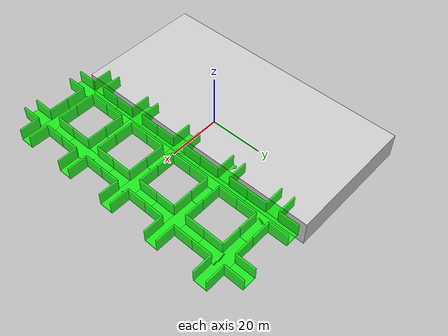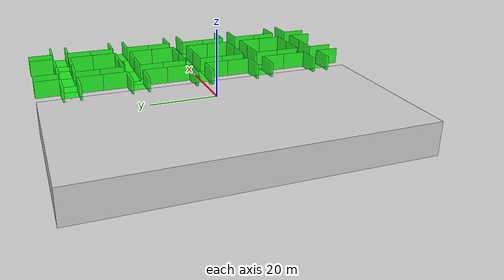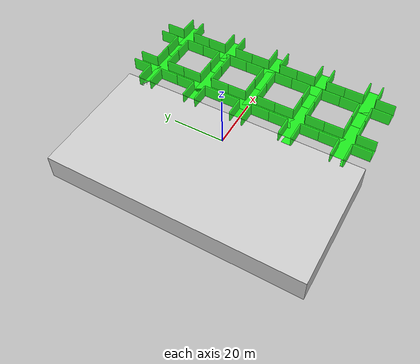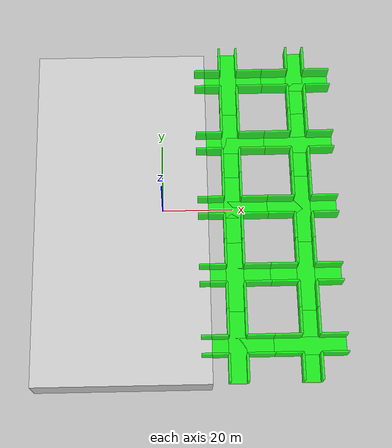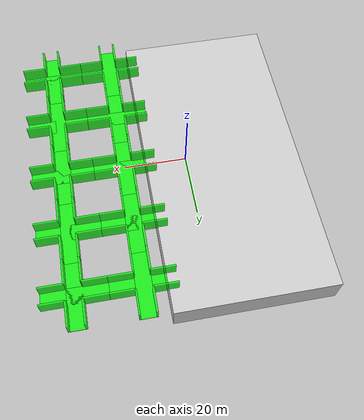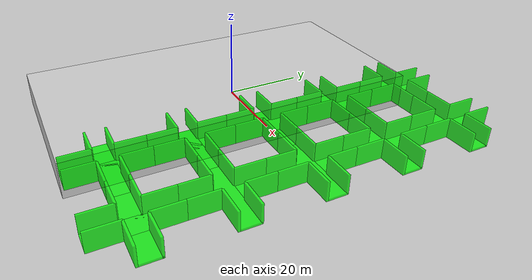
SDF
<sdf version="1.9">
 <world name="levels">
  <model name="stage">
   <pose>-12 0 -5 0 -0 0</pose>
   <static>true</static>
   <link name="link">
    <collision name="collision"><geometry><box><size>50 100 10</size></box></geometry></collision>
    <visual name="visual">
     <geometry><box><size>50 100 10</size></box></geometry>
     <material>
      <ambient>0.8 0.8 0.8 1</ambient>
      <diffuse>0.8 0.8 0.8 1</diffuse>
      <specular>0.8 0.8 0.8 1</specular>
     </material>
    </visual>
    <inertial>
     <mass>1</mass>
     <inertia><ixx>1</ixx><ixy>0</ixy><ixz>0</ixz><iyy>1</iyy><iyz>0</iyz><izz>1</izz></inertia>
    </inertial>
   </link>
  </model>
  <model name="tile_1">
   <pose>20 -40 0 0 0 -1.5708</pose>
   <static>true</static>
   <link name="link">
    <collision name="collision_0">
     <pose>0 0 -0.25 0 0 0</pose>
     <geometry><box><size>5 20 0.5</size></box></geometry>
    </collision>
    <visual name="visual_0">
     <pose>0 0 -0.25 0 0 0</pose>
     <geometry><box><size>5 20 0.5</size></box></geometry>
     <material><ambient>0 1 0 0.8</ambient><diffuse>0 1 0 0.8</diffuse><specular>1 1 1 0.8</specular></material>
    </visual>
    <collision name="collision_1">
     <pose>0 0 -0.25 0 0 1.57</pose>
     <geometry><box><size>5 20 0.5</size></box></geometry>
    </collision>
    <visual name="visual_1">
     <pose>0 0 -0.25 0 0 1.57</pose>
     <geometry><box><size>5 20 0.5</size></box></geometry>
     <material><ambient>0 1 0 0.8</ambient><diffuse>0 1 0 0.8</diffuse><specular>1 1 1 0.8</specular></material>
    </visual>
    <collision name="collision_2">
     <pose>-2.5 6.25 2 3.14 -1.57 0</pose>
     <geometry><box><size>5 7.5 0.5</size></box></geometry>
    </collision>
    <visual name="visual_2">
     <pose>-2.5 6.25 2 3.14 -1.57 0</pose>
     <geometry><box><size>5 7.5 0.5</size></box></geometry>
     <material><ambient>0 1 0 0.8</ambient><diffuse>0 1 0 0.8</diffuse><specular>1 1 1 0.8</specular></material>
    </visual>
    <collision name="collision_3">
     <pose>2.5 6.25 2 3.14 -1.57 0</pose>
     <geometry><box><size>5 7.5 0.5</size></box></geometry>
    </collision>
    <visual name="visual_3">
     <pose>2.5 6.25 2 3.14 -1.57 0</pose>
     <geometry><box><size>5 7.5 0.5</size></box></geometry>
     <material><ambient>0 1 0 0.8</ambient><diffuse>0 1 0 0.8</diffuse><specular>1 1 1 0.8</specular></material>
    </visual>
    <collision name="collision_4">
     <pose>-2.5 -6.25 2 3.14 -1.57 0</pose>
     <geometry><box><size>5 7.5 0.5</size></box></geometry>
    </collision>
    <visual name="visual_4">
     <pose>-2.5 -6.25 2 3.14 -1.57 0</pose>
     <geometry><box><size>5 7.5 0.5</size></box></geometry>
     <material><ambient>0 1 0 0.8</ambient><diffuse>0 1 0 0.8</diffuse><specular>1 1 1 0.8</specular></material>
    </visual>
    <collision name="collision_5">
     <pose>2.5 -6.25 2 3.14 -1.57 0</pose>
     <geometry><box><size>5 7.5 0.5</size></box></geometry>
    </collision>
    <visual name="visual_5">
     <pose>2.5 -6.25 2 3.14 -1.57 0</pose>
     <geometry><box><size>5 7.5 0.5</size></box></geometry>
     <material><ambient>0 1 0 0.8</ambient><diffuse>0 1 0 0.8</diffuse><specular>1 1 1 0.8</specular></material>
    </visual>
    <collision name="collision_6">
     <pose>6.25 2.5 2 1.57 1.57 0</pose>
     <geometry><box><size>5 7.5 0.5</size></box></geometry>
    </collision>
    <visual name="visual_6">
     <pose>6.25 2.5 2 1.57 1.57 0</pose>
     <geometry><box><size>5 7.5 0.5</size></box></geometry>
     <material><ambient>0 1 0 0.8</ambient><diffuse>0 1 0 0.8</diffuse><specular>1 1 1 0.8</specular></material>
    </visual>
    <collision name="collision_7">
     <pose>-6.25 2.5 2 1.57 1.57 0</pose>
     <geometry><box><size>5 7.5 0.5</size></box></geometry>
    </collision>
    <visual name="visual_7">
     <pose>-6.25 2.5 2 1.57 1.57 0</pose>
     <geometry><box><size>5 7.5 0.5</size></box></geometry>
     <material><ambient>0 1 0 0.8</ambient><diffuse>0 1 0 0.8</diffuse><specular>1 1 1 0.8</specular></material>
    </visual>
    <collision name="collision_8">
     <pose>6.25 -2.5 2 1.57 1.57 0</pose>
     <geometry><box><size>5 7.5 0.5</size></box></geometry>
    </collision>
    <visual name="visual_8">
     <pose>6.25 -2.5 2 1.57 1.57 0</pose>
     <geometry><box><size>5 7.5 0.5</size></box></geometry>
     <material><ambient>0 1 0 0.8</ambient><diffuse>0 1 0 0.8</diffuse><specular>1 1 1 0.8</specular></material>
    </visual>
    <collision name="collision_9">
     <pose>-6.25 -2.5 2 1.57 1.57 0</pose>
     <geometry><box><size>5 7.5 0.5</size></box></geometry>
    </collision>
    <visual name="visual_9">
     <pose>-6.25 -2.5 2 1.57 1.57 0</pose>
     <geometry><box><size>5 7.5 0.5</size></box></geometry>
     <material><ambient>0 1 0 0.8</ambient><diffuse>0 1 0 0.8</diffuse><specular>1 1 1 0.8</specular></material>
    </visual>
    <inertial>
     <mass>1</mass>
     <inertia><ixx>1</ixx><ixy>0</ixy><ixz>0</ixz><iyy>1</iyy><iyz>0</iyz><izz>1</izz></inertia>
    </inertial>
   </link>
  </model>
  <model name="tile_2">
   <pose>20 -20 0 0 0 -1.5708</pose>
   <static>true</static>
   <link name="link">
    <collision name="collision_0">
     <pose>0 0 -0.25 0 0 0</pose>
     <geometry><box><size>5 20 0.5</size></box></geometry>
    </collision>
    <visual name="visual_0">
     <pose>0 0 -0.25 0 0 0</pose>
     <geometry><box><size>5 20 0.5</size></box></geometry>
     <material><ambient>0 1 0 0.8</ambient><diffuse>0 1 0 0.8</diffuse><specular>1 1 1 0.8</specular></material>
    </visual>
    <collision name="collision_1">
     <pose>0 0 -0.25 0 0 1.57</pose>
     <geometry><box><size>5 20 0.5</size></box></geometry>
    </collision>
    <visual name="visual_1">
     <pose>0 0 -0.25 0 0 1.57</pose>
     <geometry><box><size>5 20 0.5</size></box></geometry>
     <material><ambient>0 1 0 0.8</ambient><diffuse>0 1 0 0.8</diffuse><specular>1 1 1 0.8</specular></material>
    </visual>
    <collision name="collision_2">
     <pose>-2.5 6.25 2 3.14 -1.57 0</pose>
     <geometry><box><size>5 7.5 0.5</size></box></geometry>
    </collision>
    <visual name="visual_2">
     <pose>-2.5 6.25 2 3.14 -1.57 0</pose>
     <geometry><box><size>5 7.5 0.5</size></box></geometry>
     <material><ambient>0 1 0 0.8</ambient><diffuse>0 1 0 0.8</diffuse><specular>1 1 1 0.8</specular></material>
    </visual>
    <collision name="collision_3">
     <pose>2.5 6.25 2 3.14 -1.57 0</pose>
     <geometry><box><size>5 7.5 0.5</size></box></geometry>
    </collision>
    <visual name="visual_3">
     <pose>2.5 6.25 2 3.14 -1.57 0</pose>
     <geometry><box><size>5 7.5 0.5</size></box></geometry>
     <material><ambient>0 1 0 0.8</ambient><diffuse>0 1 0 0.8</diffuse><specular>1 1 1 0.8</specular></material>
    </visual>
    <collision name="collision_4">
     <pose>-2.5 -6.25 2 3.14 -1.57 0</pose>
     <geometry><box><size>5 7.5 0.5</size></box></geometry>
    </collision>
    <visual name="visual_4">
     <pose>-2.5 -6.25 2 3.14 -1.57 0</pose>
     <geometry><box><size>5 7.5 0.5</size></box></geometry>
     <material><ambient>0 1 0 0.8</ambient><diffuse>0 1 0 0.8</diffuse><specular>1 1 1 0.8</specular></material>
    </visual>
    <collision name="collision_5">
     <pose>2.5 -6.25 2 3.14 -1.57 0</pose>
     <geometry><box><size>5 7.5 0.5</size></box></geometry>
    </collision>
    <visual name="visual_5">
     <pose>2.5 -6.25 2 3.14 -1.57 0</pose>
     <geometry><box><size>5 7.5 0.5</size></box></geometry>
     <material><ambient>0 1 0 0.8</ambient><diffuse>0 1 0 0.8</diffuse><specular>1 1 1 0.8</specular></material>
    </visual>
    <collision name="collision_6">
     <pose>6.25 2.5 2 1.57 1.57 0</pose>
     <geometry><box><size>5 7.5 0.5</size></box></geometry>
    </collision>
    <visual name="visual_6">
     <pose>6.25 2.5 2 1.57 1.57 0</pose>
     <geometry><box><size>5 7.5 0.5</size></box></geometry>
     <material><ambient>0 1 0 0.8</ambient><diffuse>0 1 0 0.8</diffuse><specular>1 1 1 0.8</specular></material>
    </visual>
    <collision name="collision_7">
     <pose>-6.25 2.5 2 1.57 1.57 0</pose>
     <geometry><box><size>5 7.5 0.5</size></box></geometry>
    </collision>
    <visual name="visual_7">
     <pose>-6.25 2.5 2 1.57 1.57 0</pose>
     <geometry><box><size>5 7.5 0.5</size></box></geometry>
     <material><ambient>0 1 0 0.8</ambient><diffuse>0 1 0 0.8</diffuse><specular>1 1 1 0.8</specular></material>
    </visual>
    <collision name="collision_8">
     <pose>6.25 -2.5 2 1.57 1.57 0</pose>
     <geometry><box><size>5 7.5 0.5</size></box></geometry>
    </collision>
    <visual name="visual_8">
     <pose>6.25 -2.5 2 1.57 1.57 0</pose>
     <geometry><box><size>5 7.5 0.5</size></box></geometry>
     <material><ambient>0 1 0 0.8</ambient><diffuse>0 1 0 0.8</diffuse><specular>1 1 1 0.8</specular></material>
    </visual>
    <collision name="collision_9">
     <pose>-6.25 -2.5 2 1.57 1.57 0</pose>
     <geometry><box><size>5 7.5 0.5</size></box></geometry>
    </collision>
    <visual name="visual_9">
     <pose>-6.25 -2.5 2 1.57 1.57 0</pose>
     <geometry><box><size>5 7.5 0.5</size></box></geometry>
     <material><ambient>0 1 0 0.8</ambient><diffuse>0 1 0 0.8</diffuse><specular>1 1 1 0.8</specular></material>
    </visual>
    <inertial>
     <mass>1</mass>
     <inertia><ixx>1</ixx><ixy>0</ixy><ixz>0</ixz><iyy>1</iyy><iyz>0</iyz><izz>1</izz></inertia>
    </inertial>
   </link>
  </model>
  <model name="tile_3">
   <pose>20 0 0 0 -0 0</pose>
   <static>true</static>
   <link name="link">
    <collision name="collision_0">
     <pose>0 0 -0.25 0 0 0</pose>
     <geometry><box><size>5 20 0.5</size></box></geometry>
    </collision>
    <visual name="visual_0">
     <pose>0 0 -0.25 0 0 0</pose>
     <geometry><box><size>5 20 0.5</size></box></geometry>
     <material><ambient>0 1 0 0.8</ambient><diffuse>0 1 0 0.8</diffuse><specular>1 1 1 0.8</specular></material>
    </visual>
    <collision name="collision_1">
     <pose>0 0 -0.25 0 0 1.57</pose>
     <geometry><box><size>5 20 0.5</size></box></geometry>
    </collision>
    <visual name="visual_1">
     <pose>0 0 -0.25 0 0 1.57</pose>
     <geometry><box><size>5 20 0.5</size></box></geometry>
     <material><ambient>0 1 0 0.8</ambient><diffuse>0 1 0 0.8</diffuse><specular>1 1 1 0.8</specular></material>
    </visual>
    <collision name="collision_2">
     <pose>-2.5 6.25 2 3.14 -1.57 0</pose>
     <geometry><box><size>5 7.5 0.5</size></box></geometry>
    </collision>
    <visual name="visual_2">
     <pose>-2.5 6.25 2 3.14 -1.57 0</pose>
     <geometry><box><size>5 7.5 0.5</size></box></geometry>
     <material><ambient>0 1 0 0.8</ambient><diffuse>0 1 0 0.8</diffuse><specular>1 1 1 0.8</specular></material>
    </visual>
    <collision name="collision_3">
     <pose>2.5 6.25 2 3.14 -1.57 0</pose>
     <geometry><box><size>5 7.5 0.5</size></box></geometry>
    </collision>
    <visual name="visual_3">
     <pose>2.5 6.25 2 3.14 -1.57 0</pose>
     <geometry><box><size>5 7.5 0.5</size></box></geometry>
     <material><ambient>0 1 0 0.8</ambient><diffuse>0 1 0 0.8</diffuse><specular>1 1 1 0.8</specular></material>
    </visual>
    <collision name="collision_4">
     <pose>-2.5 -6.25 2 3.14 -1.57 0</pose>
     <geometry><box><size>5 7.5 0.5</size></box></geometry>
    </collision>
    <visual name="visual_4">
     <pose>-2.5 -6.25 2 3.14 -1.57 0</pose>
     <geometry><box><size>5 7.5 0.5</size></box></geometry>
     <material><ambient>0 1 0 0.8</ambient><diffuse>0 1 0 0.8</diffuse><specular>1 1 1 0.8</specular></material>
    </visual>
    <collision name="collision_5">
     <pose>2.5 -6.25 2 3.14 -1.57 0</pose>
     <geometry><box><size>5 7.5 0.5</size></box></geometry>
    </collision>
    <visual name="visual_5">
     <pose>2.5 -6.25 2 3.14 -1.57 0</pose>
     <geometry><box><size>5 7.5 0.5</size></box></geometry>
     <material><ambient>0 1 0 0.8</ambient><diffuse>0 1 0 0.8</diffuse><specular>1 1 1 0.8</specular></material>
    </visual>
    <collision name="collision_6">
     <pose>6.25 2.5 2 1.57 1.57 0</pose>
     <geometry><box><size>5 7.5 0.5</size></box></geometry>
    </collision>
    <visual name="visual_6">
     <pose>6.25 2.5 2 1.57 1.57 0</pose>
     <geometry><box><size>5 7.5 0.5</size></box></geometry>
     <material><ambient>0 1 0 0.8</ambient><diffuse>0 1 0 0.8</diffuse><specular>1 1 1 0.8</specular></material>
    </visual>
    <collision name="collision_7">
     <pose>-6.25 2.5 2 1.57 1.57 0</pose>
     <geometry><box><size>5 7.5 0.5</size></box></geometry>
    </collision>
    <visual name="visual_7">
     <pose>-6.25 2.5 2 1.57 1.57 0</pose>
     <geometry><box><size>5 7.5 0.5</size></box></geometry>
     <material><ambient>0 1 0 0.8</ambient><diffuse>0 1 0 0.8</diffuse><specular>1 1 1 0.8</specular></material>
    </visual>
    <collision name="collision_8">
     <pose>6.25 -2.5 2 1.57 1.57 0</pose>
     <geometry><box><size>5 7.5 0.5</size></box></geometry>
    </collision>
    <visual name="visual_8">
     <pose>6.25 -2.5 2 1.57 1.57 0</pose>
     <geometry><box><size>5 7.5 0.5</size></box></geometry>
     <material><ambient>0 1 0 0.8</ambient><diffuse>0 1 0 0.8</diffuse><specular>1 1 1 0.8</specular></material>
    </visual>
    <collision name="collision_9">
     <pose>-6.25 -2.5 2 1.57 1.57 0</pose>
     <geometry><box><size>5 7.5 0.5</size></box></geometry>
    </collision>
    <visual name="visual_9">
     <pose>-6.25 -2.5 2 1.57 1.57 0</pose>
     <geometry><box><size>5 7.5 0.5</size></box></geometry>
     <material><ambient>0 1 0 0.8</ambient><diffuse>0 1 0 0.8</diffuse><specular>1 1 1 0.8</specular></material>
    </visual>
    <inertial>
     <mass>1</mass>
     <inertia><ixx>1</ixx><ixy>0</ixy><ixz>0</ixz><iyy>1</iyy><iyz>0</iyz><izz>1</izz></inertia>
    </inertial>
   </link>
  </model>
  <model name="tile_4">
   <pose>20 20 0 0 -0 0</pose>
   <static>true</static>
   <link name="link">
    <collision name="collision_0">
     <pose>0 0 -0.25 0 0 0</pose>
     <geometry><box><size>5 20 0.5</size></box></geometry>
    </collision>
    <visual name="visual_0">
     <pose>0 0 -0.25 0 0 0</pose>
     <geometry><box><size>5 20 0.5</size></box></geometry>
     <material><ambient>0 1 0 0.8</ambient><diffuse>0 1 0 0.8</diffuse><specular>1 1 1 0.8</specular></material>
    </visual>
    <collision name="collision_1">
     <pose>0 0 -0.25 0 0 1.57</pose>
     <geometry><box><size>5 20 0.5</size></box></geometry>
    </collision>
    <visual name="visual_1">
     <pose>0 0 -0.25 0 0 1.57</pose>
     <geometry><box><size>5 20 0.5</size></box></geometry>
     <material><ambient>0 1 0 0.8</ambient><diffuse>0 1 0 0.8</diffuse><specular>1 1 1 0.8</specular></material>
    </visual>
    <collision name="collision_2">
     <pose>-2.5 6.25 2 3.14 -1.57 0</pose>
     <geometry><box><size>5 7.5 0.5</size></box></geometry>
    </collision>
    <visual name="visual_2">
     <pose>-2.5 6.25 2 3.14 -1.57 0</pose>
     <geometry><box><size>5 7.5 0.5</size></box></geometry>
     <material><ambient>0 1 0 0.8</ambient><diffuse>0 1 0 0.8</diffuse><specular>1 1 1 0.8</specular></material>
    </visual>
    <collision name="collision_3">
     <pose>2.5 6.25 2 3.14 -1.57 0</pose>
     <geometry><box><size>5 7.5 0.5</size></box></geometry>
    </collision>
    <visual name="visual_3">
     <pose>2.5 6.25 2 3.14 -1.57 0</pose>
     <geometry><box><size>5 7.5 0.5</size></box></geometry>
     <material><ambient>0 1 0 0.8</ambient><diffuse>0 1 0 0.8</diffuse><specular>1 1 1 0.8</specular></material>
    </visual>
    <collision name="collision_4">
     <pose>-2.5 -6.25 2 3.14 -1.57 0</pose>
     <geometry><box><size>5 7.5 0.5</size></box></geometry>
    </collision>
    <visual name="visual_4">
     <pose>-2.5 -6.25 2 3.14 -1.57 0</pose>
     <geometry><box><size>5 7.5 0.5</size></box></geometry>
     <material><ambient>0 1 0 0.8</ambient><diffuse>0 1 0 0.8</diffuse><specular>1 1 1 0.8</specular></material>
    </visual>
    <collision name="collision_5">
     <pose>2.5 -6.25 2 3.14 -1.57 0</pose>
     <geometry><box><size>5 7.5 0.5</size></box></geometry>
    </collision>
    <visual name="visual_5">
     <pose>2.5 -6.25 2 3.14 -1.57 0</pose>
     <geometry><box><size>5 7.5 0.5</size></box></geometry>
     <material><ambient>0 1 0 0.8</ambient><diffuse>0 1 0 0.8</diffuse><specular>1 1 1 0.8</specular></material>
    </visual>
    <collision name="collision_6">
     <pose>6.25 2.5 2 1.57 1.57 0</pose>
     <geometry><box><size>5 7.5 0.5</size></box></geometry>
    </collision>
    <visual name="visual_6">
     <pose>6.25 2.5 2 1.57 1.57 0</pose>
     <geometry><box><size>5 7.5 0.5</size></box></geometry>
     <material><ambient>0 1 0 0.8</ambient><diffuse>0 1 0 0.8</diffuse><specular>1 1 1 0.8</specular></material>
    </visual>
    <collision name="collision_7">
     <pose>-6.25 2.5 2 1.57 1.57 0</pose>
     <geometry><box><size>5 7.5 0.5</size></box></geometry>
    </collision>
    <visual name="visual_7">
     <pose>-6.25 2.5 2 1.57 1.57 0</pose>
     <geometry><box><size>5 7.5 0.5</size></box></geometry>
     <material><ambient>0 1 0 0.8</ambient><diffuse>0 1 0 0.8</diffuse><specular>1 1 1 0.8</specular></material>
    </visual>
    <collision name="collision_8">
     <pose>6.25 -2.5 2 1.57 1.57 0</pose>
     <geometry><box><size>5 7.5 0.5</size></box></geometry>
    </collision>
    <visual name="visual_8">
     <pose>6.25 -2.5 2 1.57 1.57 0</pose>
     <geometry><box><size>5 7.5 0.5</size></box></geometry>
     <material><ambient>0 1 0 0.8</ambient><diffuse>0 1 0 0.8</diffuse><specular>1 1 1 0.8</specular></material>
    </visual>
    <collision name="collision_9">
     <pose>-6.25 -2.5 2 1.57 1.57 0</pose>
     <geometry><box><size>5 7.5 0.5</size></box></geometry>
    </collision>
    <visual name="visual_9">
     <pose>-6.25 -2.5 2 1.57 1.57 0</pose>
     <geometry><box><size>5 7.5 0.5</size></box></geometry>
     <material><ambient>0 1 0 0.8</ambient><diffuse>0 1 0 0.8</diffuse><specular>1 1 1 0.8</specular></material>
    </visual>
    <inertial>
     <mass>1</mass>
     <inertia><ixx>1</ixx><ixy>0</ixy><ixz>0</ixz><iyy>1</iyy><iyz>0</iyz><izz>1</izz></inertia>
    </inertial>
   </link>
  </model>
  <model name="tile_5">
   <pose>20 40 0 0 0 -1.5708</pose>
   <static>true</static>
   <link name="link">
    <collision name="collision_0">
     <pose>0 0 -0.25 0 0 0</pose>
     <geometry><box><size>5 20 0.5</size></box></geometry>
    </collision>
    <visual name="visual_0">
     <pose>0 0 -0.25 0 0 0</pose>
     <geometry><box><size>5 20 0.5</size></box></geometry>
     <material><ambient>0 1 0 0.8</ambient><diffuse>0 1 0 0.8</diffuse><specular>1 1 1 0.8</specular></material>
    </visual>
    <collision name="collision_1">
     <pose>0 0 -0.25 0 0 1.57</pose>
     <geometry><box><size>5 20 0.5</size></box></geometry>
    </collision>
    <visual name="visual_1">
     <pose>0 0 -0.25 0 0 1.57</pose>
     <geometry><box><size>5 20 0.5</size></box></geometry>
     <material><ambient>0 1 0 0.8</ambient><diffuse>0 1 0 0.8</diffuse><specular>1 1 1 0.8</specular></material>
    </visual>
    <collision name="collision_2">
     <pose>-2.5 6.25 2 3.14 -1.57 0</pose>
     <geometry><box><size>5 7.5 0.5</size></box></geometry>
    </collision>
    <visual name="visual_2">
     <pose>-2.5 6.25 2 3.14 -1.57 0</pose>
     <geometry><box><size>5 7.5 0.5</size></box></geometry>
     <material><ambient>0 1 0 0.8</ambient><diffuse>0 1 0 0.8</diffuse><specular>1 1 1 0.8</specular></material>
    </visual>
    <collision name="collision_3">
     <pose>2.5 6.25 2 3.14 -1.57 0</pose>
     <geometry><box><size>5 7.5 0.5</size></box></geometry>
    </collision>
    <visual name="visual_3">
     <pose>2.5 6.25 2 3.14 -1.57 0</pose>
     <geometry><box><size>5 7.5 0.5</size></box></geometry>
     <material><ambient>0 1 0 0.8</ambient><diffuse>0 1 0 0.8</diffuse><specular>1 1 1 0.8</specular></material>
    </visual>
    <collision name="collision_4">
     <pose>-2.5 -6.25 2 3.14 -1.57 0</pose>
     <geometry><box><size>5 7.5 0.5</size></box></geometry>
    </collision>
    <visual name="visual_4">
     <pose>-2.5 -6.25 2 3.14 -1.57 0</pose>
     <geometry><box><size>5 7.5 0.5</size></box></geometry>
     <material><ambient>0 1 0 0.8</ambient><diffuse>0 1 0 0.8</diffuse><specular>1 1 1 0.8</specular></material>
    </visual>
    <collision name="collision_5">
     <pose>2.5 -6.25 2 3.14 -1.57 0</pose>
     <geometry><box><size>5 7.5 0.5</size></box></geometry>
    </collision>
    <visual name="visual_5">
     <pose>2.5 -6.25 2 3.14 -1.57 0</pose>
     <geometry><box><size>5 7.5 0.5</size></box></geometry>
     <material><ambient>0 1 0 0.8</ambient><diffuse>0 1 0 0.8</diffuse><specular>1 1 1 0.8</specular></material>
    </visual>
    <collision name="collision_6">
     <pose>6.25 2.5 2 1.57 1.57 0</pose>
     <geometry><box><size>5 7.5 0.5</size></box></geometry>
    </collision>
    <visual name="visual_6">
     <pose>6.25 2.5 2 1.57 1.57 0</pose>
     <geometry><box><size>5 7.5 0.5</size></box></geometry>
     <material><ambient>0 1 0 0.8</ambient><diffuse>0 1 0 0.8</diffuse><specular>1 1 1 0.8</specular></material>
    </visual>
    <collision name="collision_7">
     <pose>-6.25 2.5 2 1.57 1.57 0</pose>
     <geometry><box><size>5 7.5 0.5</size></box></geometry>
    </collision>
    <visual name="visual_7">
     <pose>-6.25 2.5 2 1.57 1.57 0</pose>
     <geometry><box><size>5 7.5 0.5</size></box></geometry>
     <material><ambient>0 1 0 0.8</ambient><diffuse>0 1 0 0.8</diffuse><specular>1 1 1 0.8</specular></material>
    </visual>
    <collision name="collision_8">
     <pose>6.25 -2.5 2 1.57 1.57 0</pose>
     <geometry><box><size>5 7.5 0.5</size></box></geometry>
    </collision>
    <visual name="visual_8">
     <pose>6.25 -2.5 2 1.57 1.57 0</pose>
     <geometry><box><size>5 7.5 0.5</size></box></geometry>
     <material><ambient>0 1 0 0.8</ambient><diffuse>0 1 0 0.8</diffuse><specular>1 1 1 0.8</specular></material>
    </visual>
    <collision name="collision_9">
     <pose>-6.25 -2.5 2 1.57 1.57 0</pose>
     <geometry><box><size>5 7.5 0.5</size></box></geometry>
    </collision>
    <visual name="visual_9">
     <pose>-6.25 -2.5 2 1.57 1.57 0</pose>
     <geometry><box><size>5 7.5 0.5</size></box></geometry>
     <material><ambient>0 1 0 0.8</ambient><diffuse>0 1 0 0.8</diffuse><specular>1 1 1 0.8</specular></material>
    </visual>
    <inertial>
     <mass>1</mass>
     <inertia><ixx>1</ixx><ixy>0</ixy><ixz>0</ixz><iyy>1</iyy><iyz>0</iyz><izz>1</izz></inertia>
    </inertial>
   </link>
  </model>
  <model name="tile_6">
   <pose>40 -40 0 0 -0 0</pose>
   <static>true</static>
   <link name="link">
    <collision name="collision_0">
     <pose>0 0 -0.25 0 0 0</pose>
     <geometry><box><size>5 20 0.5</size></box></geometry>
    </collision>
    <visual name="visual_0">
     <pose>0 0 -0.25 0 0 0</pose>
     <geometry><box><size>5 20 0.5</size></box></geometry>
     <material><ambient>0 1 0 0.8</ambient><diffuse>0 1 0 0.8</diffuse><specular>1 1 1 0.8</specular></material>
    </visual>
    <collision name="collision_1">
     <pose>0 0 -0.25 0 0 1.57</pose>
     <geometry><box><size>5 20 0.5</size></box></geometry>
    </collision>
    <visual name="visual_1">
     <pose>0 0 -0.25 0 0 1.57</pose>
     <geometry><box><size>5 20 0.5</size></box></geometry>
     <material><ambient>0 1 0 0.8</ambient><diffuse>0 1 0 0.8</diffuse><specular>1 1 1 0.8</specular></material>
    </visual>
    <collision name="collision_2">
     <pose>-2.5 6.25 2 3.14 -1.57 0</pose>
     <geometry><box><size>5 7.5 0.5</size></box></geometry>
    </collision>
    <visual name="visual_2">
     <pose>-2.5 6.25 2 3.14 -1.57 0</pose>
     <geometry><box><size>5 7.5 0.5</size></box></geometry>
     <material><ambient>0 1 0 0.8</ambient><diffuse>0 1 0 0.8</diffuse><specular>1 1 1 0.8</specular></material>
    </visual>
    <collision name="collision_3">
     <pose>2.5 6.25 2 3.14 -1.57 0</pose>
     <geometry><box><size>5 7.5 0.5</size></box></geometry>
    </collision>
    <visual name="visual_3">
     <pose>2.5 6.25 2 3.14 -1.57 0</pose>
     <geometry><box><size>5 7.5 0.5</size></box></geometry>
     <material><ambient>0 1 0 0.8</ambient><diffuse>0 1 0 0.8</diffuse><specular>1 1 1 0.8</specular></material>
    </visual>
    <collision name="collision_4">
     <pose>-2.5 -6.25 2 3.14 -1.57 0</pose>
     <geometry><box><size>5 7.5 0.5</size></box></geometry>
    </collision>
    <visual name="visual_4">
     <pose>-2.5 -6.25 2 3.14 -1.57 0</pose>
     <geometry><box><size>5 7.5 0.5</size></box></geometry>
     <material><ambient>0 1 0 0.8</ambient><diffuse>0 1 0 0.8</diffuse><specular>1 1 1 0.8</specular></material>
    </visual>
    <collision name="collision_5">
     <pose>2.5 -6.25 2 3.14 -1.57 0</pose>
     <geometry><box><size>5 7.5 0.5</size></box></geometry>
    </collision>
    <visual name="visual_5">
     <pose>2.5 -6.25 2 3.14 -1.57 0</pose>
     <geometry><box><size>5 7.5 0.5</size></box></geometry>
     <material><ambient>0 1 0 0.8</ambient><diffuse>0 1 0 0.8</diffuse><specular>1 1 1 0.8</specular></material>
    </visual>
    <collision name="collision_6">
     <pose>6.25 2.5 2 1.57 1.57 0</pose>
     <geometry><box><size>5 7.5 0.5</size></box></geometry>
    </collision>
    <visual name="visual_6">
     <pose>6.25 2.5 2 1.57 1.57 0</pose>
     <geometry><box><size>5 7.5 0.5</size></box></geometry>
     <material><ambient>0 1 0 0.8</ambient><diffuse>0 1 0 0.8</diffuse><specular>1 1 1 0.8</specular></material>
    </visual>
    <collision name="collision_7">
     <pose>-6.25 2.5 2 1.57 1.57 0</pose>
     <geometry><box><size>5 7.5 0.5</size></box></geometry>
    </collision>
    <visual name="visual_7">
     <pose>-6.25 2.5 2 1.57 1.57 0</pose>
     <geometry><box><size>5 7.5 0.5</size></box></geometry>
     <material><ambient>0 1 0 0.8</ambient><diffuse>0 1 0 0.8</diffuse><specular>1 1 1 0.8</specular></material>
    </visual>
    <collision name="collision_8">
     <pose>6.25 -2.5 2 1.57 1.57 0</pose>
     <geometry><box><size>5 7.5 0.5</size></box></geometry>
    </collision>
    <visual name="visual_8">
     <pose>6.25 -2.5 2 1.57 1.57 0</pose>
     <geometry><box><size>5 7.5 0.5</size></box></geometry>
     <material><ambient>0 1 0 0.8</ambient><diffuse>0 1 0 0.8</diffuse><specular>1 1 1 0.8</specular></material>
    </visual>
    <collision name="collision_9">
     <pose>-6.25 -2.5 2 1.57 1.57 0</pose>
     <geometry><box><size>5 7.5 0.5</size></box></geometry>
    </collision>
    <visual name="visual_9">
     <pose>-6.25 -2.5 2 1.57 1.57 0</pose>
     <geometry><box><size>5 7.5 0.5</size></box></geometry>
     <material><ambient>0 1 0 0.8</ambient><diffuse>0 1 0 0.8</diffuse><specular>1 1 1 0.8</specular></material>
    </visual>
    <inertial>
     <mass>1</mass>
     <inertia><ixx>1</ixx><ixy>0</ixy><ixz>0</ixz><iyy>1</iyy><iyz>0</iyz><izz>1</izz></inertia>
    </inertial>
   </link>
  </model>
  <model name="tile_7">
   <pose>40 -20 0 0 0 -1.5708</pose>
   <static>true</static>
   <link name="link">
    <collision name="collision_0">
     <pose>0 0 -0.25 0 0 0</pose>
     <geometry><box><size>5 20 0.5</size></box></geometry>
    </collision>
    <visual name="visual_0">
     <pose>0 0 -0.25 0 0 0</pose>
     <geometry><box><size>5 20 0.5</size></box></geometry>
     <material><ambient>0 1 0 0.8</ambient><diffuse>0 1 0 0.8</diffuse><specular>1 1 1 0.8</specular></material>
    </visual>
    <collision name="collision_1">
     <pose>0 0 -0.25 0 0 1.57</pose>
     <geometry><box><size>5 20 0.5</size></box></geometry>
    </collision>
    <visual name="visual_1">
     <pose>0 0 -0.25 0 0 1.57</pose>
     <geometry><box><size>5 20 0.5</size></box></geometry>
     <material><ambient>0 1 0 0.8</ambient><diffuse>0 1 0 0.8</diffuse><specular>1 1 1 0.8</specular></material>
    </visual>
    <collision name="collision_2">
     <pose>-2.5 6.25 2 3.14 -1.57 0</pose>
     <geometry><box><size>5 7.5 0.5</size></box></geometry>
    </collision>
    <visual name="visual_2">
     <pose>-2.5 6.25 2 3.14 -1.57 0</pose>
     <geometry><box><size>5 7.5 0.5</size></box></geometry>
     <material><ambient>0 1 0 0.8</ambient><diffuse>0 1 0 0.8</diffuse><specular>1 1 1 0.8</specular></material>
    </visual>
    <collision name="collision_3">
     <pose>2.5 6.25 2 3.14 -1.57 0</pose>
     <geometry><box><size>5 7.5 0.5</size></box></geometry>
    </collision>
    <visual name="visual_3">
     <pose>2.5 6.25 2 3.14 -1.57 0</pose>
     <geometry><box><size>5 7.5 0.5</size></box></geometry>
     <material><ambient>0 1 0 0.8</ambient><diffuse>0 1 0 0.8</diffuse><specular>1 1 1 0.8</specular></material>
    </visual>
    <collision name="collision_4">
     <pose>-2.5 -6.25 2 3.14 -1.57 0</pose>
     <geometry><box><size>5 7.5 0.5</size></box></geometry>
    </collision>
    <visual name="visual_4">
     <pose>-2.5 -6.25 2 3.14 -1.57 0</pose>
     <geometry><box><size>5 7.5 0.5</size></box></geometry>
     <material><ambient>0 1 0 0.8</ambient><diffuse>0 1 0 0.8</diffuse><specular>1 1 1 0.8</specular></material>
    </visual>
    <collision name="collision_5">
     <pose>2.5 -6.25 2 3.14 -1.57 0</pose>
     <geometry><box><size>5 7.5 0.5</size></box></geometry>
    </collision>
    <visual name="visual_5">
     <pose>2.5 -6.25 2 3.14 -1.57 0</pose>
     <geometry><box><size>5 7.5 0.5</size></box></geometry>
     <material><ambient>0 1 0 0.8</ambient><diffuse>0 1 0 0.8</diffuse><specular>1 1 1 0.8</specular></material>
    </visual>
    <collision name="collision_6">
     <pose>6.25 2.5 2 1.57 1.57 0</pose>
     <geometry><box><size>5 7.5 0.5</size></box></geometry>
    </collision>
    <visual name="visual_6">
     <pose>6.25 2.5 2 1.57 1.57 0</pose>
     <geometry><box><size>5 7.5 0.5</size></box></geometry>
     <material><ambient>0 1 0 0.8</ambient><diffuse>0 1 0 0.8</diffuse><specular>1 1 1 0.8</specular></material>
    </visual>
    <collision name="collision_7">
     <pose>-6.25 2.5 2 1.57 1.57 0</pose>
     <geometry><box><size>5 7.5 0.5</size></box></geometry>
    </collision>
    <visual name="visual_7">
     <pose>-6.25 2.5 2 1.57 1.57 0</pose>
     <geometry><box><size>5 7.5 0.5</size></box></geometry>
     <material><ambient>0 1 0 0.8</ambient><diffuse>0 1 0 0.8</diffuse><specular>1 1 1 0.8</specular></material>
    </visual>
    <collision name="collision_8">
     <pose>6.25 -2.5 2 1.57 1.57 0</pose>
     <geometry><box><size>5 7.5 0.5</size></box></geometry>
    </collision>
    <visual name="visual_8">
     <pose>6.25 -2.5 2 1.57 1.57 0</pose>
     <geometry><box><size>5 7.5 0.5</size></box></geometry>
     <material><ambient>0 1 0 0.8</ambient><diffuse>0 1 0 0.8</diffuse><specular>1 1 1 0.8</specular></material>
    </visual>
    <collision name="collision_9">
     <pose>-6.25 -2.5 2 1.57 1.57 0</pose>
     <geometry><box><size>5 7.5 0.5</size></box></geometry>
    </collision>
    <visual name="visual_9">
     <pose>-6.25 -2.5 2 1.57 1.57 0</pose>
     <geometry><box><size>5 7.5 0.5</size></box></geometry>
     <material><ambient>0 1 0 0.8</ambient><diffuse>0 1 0 0.8</diffuse><specular>1 1 1 0.8</specular></material>
    </visual>
    <inertial>
     <mass>1</mass>
     <inertia><ixx>1</ixx><ixy>0</ixy><ixz>0</ixz><iyy>1</iyy><iyz>0</iyz><izz>1</izz></inertia>
    </inertial>
   </link>
  </model>
  <model name="tile_8">
   <pose>40 0 0 0 -0 1.5708</pose>
   <static>true</static>
   <link name="link">
    <collision name="collision_0">
     <pose>0 0 -0.25 0 0 0</pose>
     <geometry><box><size>5 20 0.5</size></box></geometry>
    </collision>
    <visual name="visual_0">
     <pose>0 0 -0.25 0 0 0</pose>
     <geometry><box><size>5 20 0.5</size></box></geometry>
     <material><ambient>0 1 0 0.8</ambient><diffuse>0 1 0 0.8</diffuse><specular>1 1 1 0.8</specular></material>
    </visual>
    <collision name="collision_1">
     <pose>0 0 -0.25 0 0 1.57</pose>
     <geometry><box><size>5 20 0.5</size></box></geometry>
    </collision>
    <visual name="visual_1">
     <pose>0 0 -0.25 0 0 1.57</pose>
     <geometry><box><size>5 20 0.5</size></box></geometry>
     <material><ambient>0 1 0 0.8</ambient><diffuse>0 1 0 0.8</diffuse><specular>1 1 1 0.8</specular></material>
    </visual>
    <collision name="collision_2">
     <pose>-2.5 6.25 2 3.14 -1.57 0</pose>
     <geometry><box><size>5 7.5 0.5</size></box></geometry>
    </collision>
    <visual name="visual_2">
     <pose>-2.5 6.25 2 3.14 -1.57 0</pose>
     <geometry><box><size>5 7.5 0.5</size></box></geometry>
     <material><ambient>0 1 0 0.8</ambient><diffuse>0 1 0 0.8</diffuse><specular>1 1 1 0.8</specular></material>
    </visual>
    <collision name="collision_3">
     <pose>2.5 6.25 2 3.14 -1.57 0</pose>
     <geometry><box><size>5 7.5 0.5</size></box></geometry>
    </collision>
    <visual name="visual_3">
     <pose>2.5 6.25 2 3.14 -1.57 0</pose>
     <geometry><box><size>5 7.5 0.5</size></box></geometry>
     <material><ambient>0 1 0 0.8</ambient><diffuse>0 1 0 0.8</diffuse><specular>1 1 1 0.8</specular></material>
    </visual>
    <collision name="collision_4">
     <pose>-2.5 -6.25 2 3.14 -1.57 0</pose>
     <geometry><box><size>5 7.5 0.5</size></box></geometry>
    </collision>
    <visual name="visual_4">
     <pose>-2.5 -6.25 2 3.14 -1.57 0</pose>
     <geometry><box><size>5 7.5 0.5</size></box></geometry>
     <material><ambient>0 1 0 0.8</ambient><diffuse>0 1 0 0.8</diffuse><specular>1 1 1 0.8</specular></material>
    </visual>
    <collision name="collision_5">
     <pose>2.5 -6.25 2 3.14 -1.57 0</pose>
     <geometry><box><size>5 7.5 0.5</size></box></geometry>
    </collision>
    <visual name="visual_5">
     <pose>2.5 -6.25 2 3.14 -1.57 0</pose>
     <geometry><box><size>5 7.5 0.5</size></box></geometry>
     <material><ambient>0 1 0 0.8</ambient><diffuse>0 1 0 0.8</diffuse><specular>1 1 1 0.8</specular></material>
    </visual>
    <collision name="collision_6">
     <pose>6.25 2.5 2 1.57 1.57 0</pose>
     <geometry><box><size>5 7.5 0.5</size></box></geometry>
    </collision>
    <visual name="visual_6">
     <pose>6.25 2.5 2 1.57 1.57 0</pose>
     <geometry><box><size>5 7.5 0.5</size></box></geometry>
     <material><ambient>0 1 0 0.8</ambient><diffuse>0 1 0 0.8</diffuse><specular>1 1 1 0.8</specular></material>
    </visual>
    <collision name="collision_7">
     <pose>-6.25 2.5 2 1.57 1.57 0</pose>
     <geometry><box><size>5 7.5 0.5</size></box></geometry>
    </collision>
    <visual name="visual_7">
     <pose>-6.25 2.5 2 1.57 1.57 0</pose>
     <geometry><box><size>5 7.5 0.5</size></box></geometry>
     <material><ambient>0 1 0 0.8</ambient><diffuse>0 1 0 0.8</diffuse><specular>1 1 1 0.8</specular></material>
    </visual>
    <collision name="collision_8">
     <pose>6.25 -2.5 2 1.57 1.57 0</pose>
     <geometry><box><size>5 7.5 0.5</size></box></geometry>
    </collision>
    <visual name="visual_8">
     <pose>6.25 -2.5 2 1.57 1.57 0</pose>
     <geometry><box><size>5 7.5 0.5</size></box></geometry>
     <material><ambient>0 1 0 0.8</ambient><diffuse>0 1 0 0.8</diffuse><specular>1 1 1 0.8</specular></material>
    </visual>
    <collision name="collision_9">
     <pose>-6.25 -2.5 2 1.57 1.57 0</pose>
     <geometry><box><size>5 7.5 0.5</size></box></geometry>
    </collision>
    <visual name="visual_9">
     <pose>-6.25 -2.5 2 1.57 1.57 0</pose>
     <geometry><box><size>5 7.5 0.5</size></box></geometry>
     <material><ambient>0 1 0 0.8</ambient><diffuse>0 1 0 0.8</diffuse><specular>1 1 1 0.8</specular></material>
    </visual>
    <inertial>
     <mass>1</mass>
     <inertia><ixx>1</ixx><ixy>0</ixy><ixz>0</ixz><iyy>1</iyy><iyz>0</iyz><izz>1</izz></inertia>
    </inertial>
   </link>
  </model>
  <model name="tile_9">
   <pose>40 20 0 0 -0 0</pose>
   <static>true</static>
   <link name="link">
    <collision name="collision_0">
     <pose>0 0 -0.25 0 0 0</pose>
     <geometry><box><size>5 20 0.5</size></box></geometry>
    </collision>
    <visual name="visual_0">
     <pose>0 0 -0.25 0 0 0</pose>
     <geometry><box><size>5 20 0.5</size></box></geometry>
     <material><ambient>0 1 0 0.8</ambient><diffuse>0 1 0 0.8</diffuse><specular>1 1 1 0.8</specular></material>
    </visual>
    <collision name="collision_1">
     <pose>0 0 -0.25 0 0 1.57</pose>
     <geometry><box><size>5 20 0.5</size></box></geometry>
    </collision>
    <visual name="visual_1">
     <pose>0 0 -0.25 0 0 1.57</pose>
     <geometry><box><size>5 20 0.5</size></box></geometry>
     <material><ambient>0 1 0 0.8</ambient><diffuse>0 1 0 0.8</diffuse><specular>1 1 1 0.8</specular></material>
    </visual>
    <collision name="collision_2">
     <pose>-2.5 6.25 2 3.14 -1.57 0</pose>
     <geometry><box><size>5 7.5 0.5</size></box></geometry>
    </collision>
    <visual name="visual_2">
     <pose>-2.5 6.25 2 3.14 -1.57 0</pose>
     <geometry><box><size>5 7.5 0.5</size></box></geometry>
     <material><ambient>0 1 0 0.8</ambient><diffuse>0 1 0 0.8</diffuse><specular>1 1 1 0.8</specular></material>
    </visual>
    <collision name="collision_3">
     <pose>2.5 6.25 2 3.14 -1.57 0</pose>
     <geometry><box><size>5 7.5 0.5</size></box></geometry>
    </collision>
    <visual name="visual_3">
     <pose>2.5 6.25 2 3.14 -1.57 0</pose>
     <geometry><box><size>5 7.5 0.5</size></box></geometry>
     <material><ambient>0 1 0 0.8</ambient><diffuse>0 1 0 0.8</diffuse><specular>1 1 1 0.8</specular></material>
    </visual>
    <collision name="collision_4">
     <pose>-2.5 -6.25 2 3.14 -1.57 0</pose>
     <geometry><box><size>5 7.5 0.5</size></box></geometry>
    </collision>
    <visual name="visual_4">
     <pose>-2.5 -6.25 2 3.14 -1.57 0</pose>
     <geometry><box><size>5 7.5 0.5</size></box></geometry>
     <material><ambient>0 1 0 0.8</ambient><diffuse>0 1 0 0.8</diffuse><specular>1 1 1 0.8</specular></material>
    </visual>
    <collision name="collision_5">
     <pose>2.5 -6.25 2 3.14 -1.57 0</pose>
     <geometry><box><size>5 7.5 0.5</size></box></geometry>
    </collision>
    <visual name="visual_5">
     <pose>2.5 -6.25 2 3.14 -1.57 0</pose>
     <geometry><box><size>5 7.5 0.5</size></box></geometry>
     <material><ambient>0 1 0 0.8</ambient><diffuse>0 1 0 0.8</diffuse><specular>1 1 1 0.8</specular></material>
    </visual>
    <collision name="collision_6">
     <pose>6.25 2.5 2 1.57 1.57 0</pose>
     <geometry><box><size>5 7.5 0.5</size></box></geometry>
    </collision>
    <visual name="visual_6">
     <pose>6.25 2.5 2 1.57 1.57 0</pose>
     <geometry><box><size>5 7.5 0.5</size></box></geometry>
     <material><ambient>0 1 0 0.8</ambient><diffuse>0 1 0 0.8</diffuse><specular>1 1 1 0.8</specular></material>
    </visual>
    <collision name="collision_7">
     <pose>-6.25 2.5 2 1.57 1.57 0</pose>
     <geometry><box><size>5 7.5 0.5</size></box></geometry>
    </collision>
    <visual name="visual_7">
     <pose>-6.25 2.5 2 1.57 1.57 0</pose>
     <geometry><box><size>5 7.5 0.5</size></box></geometry>
     <material><ambient>0 1 0 0.8</ambient><diffuse>0 1 0 0.8</diffuse><specular>1 1 1 0.8</specular></material>
    </visual>
    <collision name="collision_8">
     <pose>6.25 -2.5 2 1.57 1.57 0</pose>
     <geometry><box><size>5 7.5 0.5</size></box></geometry>
    </collision>
    <visual name="visual_8">
     <pose>6.25 -2.5 2 1.57 1.57 0</pose>
     <geometry><box><size>5 7.5 0.5</size></box></geometry>
     <material><ambient>0 1 0 0.8</ambient><diffuse>0 1 0 0.8</diffuse><specular>1 1 1 0.8</specular></material>
    </visual>
    <collision name="collision_9">
     <pose>-6.25 -2.5 2 1.57 1.57 0</pose>
     <geometry><box><size>5 7.5 0.5</size></box></geometry>
    </collision>
    <visual name="visual_9">
     <pose>-6.25 -2.5 2 1.57 1.57 0</pose>
     <geometry><box><size>5 7.5 0.5</size></box></geometry>
     <material><ambient>0 1 0 0.8</ambient><diffuse>0 1 0 0.8</diffuse><specular>1 1 1 0.8</specular></material>
    </visual>
    <inertial>
     <mass>1</mass>
     <inertia><ixx>1</ixx><ixy>0</ixy><ixz>0</ixz><iyy>1</iyy><iyz>0</iyz><izz>1</izz></inertia>
    </inertial>
   </link>
  </model>
  <model name="tile_10">
   <pose>40 40 0 0 -0 0</pose>
   <static>true</static>
   <link name="link">
    <collision name="collision_0">
     <pose>0 0 -0.25 0 0 0</pose>
     <geometry><box><size>5 20 0.5</size></box></geometry>
    </collision>
    <visual name="visual_0">
     <pose>0 0 -0.25 0 0 0</pose>
     <geometry><box><size>5 20 0.5</size></box></geometry>
     <material><ambient>0 1 0 0.8</ambient><diffuse>0 1 0 0.8</diffuse><specular>1 1 1 0.8</specular></material>
    </visual>
    <collision name="collision_1">
     <pose>0 0 -0.25 0 0 1.57</pose>
     <geometry><box><size>5 20 0.5</size></box></geometry>
    </collision>
    <visual name="visual_1">
     <pose>0 0 -0.25 0 0 1.57</pose>
     <geometry><box><size>5 20 0.5</size></box></geometry>
     <material><ambient>0 1 0 0.8</ambient><diffuse>0 1 0 0.8</diffuse><specular>1 1 1 0.8</specular></material>
    </visual>
    <collision name="collision_2">
     <pose>-2.5 6.25 2 3.14 -1.57 0</pose>
     <geometry><box><size>5 7.5 0.5</size></box></geometry>
    </collision>
    <visual name="visual_2">
     <pose>-2.5 6.25 2 3.14 -1.57 0</pose>
     <geometry><box><size>5 7.5 0.5</size></box></geometry>
     <material><ambient>0 1 0 0.8</ambient><diffuse>0 1 0 0.8</diffuse><specular>1 1 1 0.8</specular></material>
    </visual>
    <collision name="collision_3">
     <pose>2.5 6.25 2 3.14 -1.57 0</pose>
     <geometry><box><size>5 7.5 0.5</size></box></geometry>
    </collision>
    <visual name="visual_3">
     <pose>2.5 6.25 2 3.14 -1.57 0</pose>
     <geometry><box><size>5 7.5 0.5</size></box></geometry>
     <material><ambient>0 1 0 0.8</ambient><diffuse>0 1 0 0.8</diffuse><specular>1 1 1 0.8</specular></material>
    </visual>
    <collision name="collision_4">
     <pose>-2.5 -6.25 2 3.14 -1.57 0</pose>
     <geometry><box><size>5 7.5 0.5</size></box></geometry>
    </collision>
    <visual name="visual_4">
     <pose>-2.5 -6.25 2 3.14 -1.57 0</pose>
     <geometry><box><size>5 7.5 0.5</size></box></geometry>
     <material><ambient>0 1 0 0.8</ambient><diffuse>0 1 0 0.8</diffuse><specular>1 1 1 0.8</specular></material>
    </visual>
    <collision name="collision_5">
     <pose>2.5 -6.25 2 3.14 -1.57 0</pose>
     <geometry><box><size>5 7.5 0.5</size></box></geometry>
    </collision>
    <visual name="visual_5">
     <pose>2.5 -6.25 2 3.14 -1.57 0</pose>
     <geometry><box><size>5 7.5 0.5</size></box></geometry>
     <material><ambient>0 1 0 0.8</ambient><diffuse>0 1 0 0.8</diffuse><specular>1 1 1 0.8</specular></material>
    </visual>
    <collision name="collision_6">
     <pose>6.25 2.5 2 1.57 1.57 0</pose>
     <geometry><box><size>5 7.5 0.5</size></box></geometry>
    </collision>
    <visual name="visual_6">
     <pose>6.25 2.5 2 1.57 1.57 0</pose>
     <geometry><box><size>5 7.5 0.5</size></box></geometry>
     <material><ambient>0 1 0 0.8</ambient><diffuse>0 1 0 0.8</diffuse><specular>1 1 1 0.8</specular></material>
    </visual>
    <collision name="collision_7">
     <pose>-6.25 2.5 2 1.57 1.57 0</pose>
     <geometry><box><size>5 7.5 0.5</size></box></geometry>
    </collision>
    <visual name="visual_7">
     <pose>-6.25 2.5 2 1.57 1.57 0</pose>
     <geometry><box><size>5 7.5 0.5</size></box></geometry>
     <material><ambient>0 1 0 0.8</ambient><diffuse>0 1 0 0.8</diffuse><specular>1 1 1 0.8</specular></material>
    </visual>
    <collision name="collision_8">
     <pose>6.25 -2.5 2 1.57 1.57 0</pose>
     <geometry><box><size>5 7.5 0.5</size></box></geometry>
    </collision>
    <visual name="visual_8">
     <pose>6.25 -2.5 2 1.57 1.57 0</pose>
     <geometry><box><size>5 7.5 0.5</size></box></geometry>
     <material><ambient>0 1 0 0.8</ambient><diffuse>0 1 0 0.8</diffuse><specular>1 1 1 0.8</specular></material>
    </visual>
    <collision name="collision_9">
     <pose>-6.25 -2.5 2 1.57 1.57 0</pose>
     <geometry><box><size>5 7.5 0.5</size></box></geometry>
    </collision>
    <visual name="visual_9">
     <pose>-6.25 -2.5 2 1.57 1.57 0</pose>
     <geometry><box><size>5 7.5 0.5</size></box></geometry>
     <material><ambient>0 1 0 0.8</ambient><diffuse>0 1 0 0.8</diffuse><specular>1 1 1 0.8</specular></material>
    </visual>
    <inertial>
     <mass>1</mass>
     <inertia><ixx>1</ixx><ixy>0</ixy><ixz>0</ixz><iyy>1</iyy><iyz>0</iyz><izz>1</izz></inertia>
    </inertial>
   </link>
  </model>
 </world>
</sdf>
